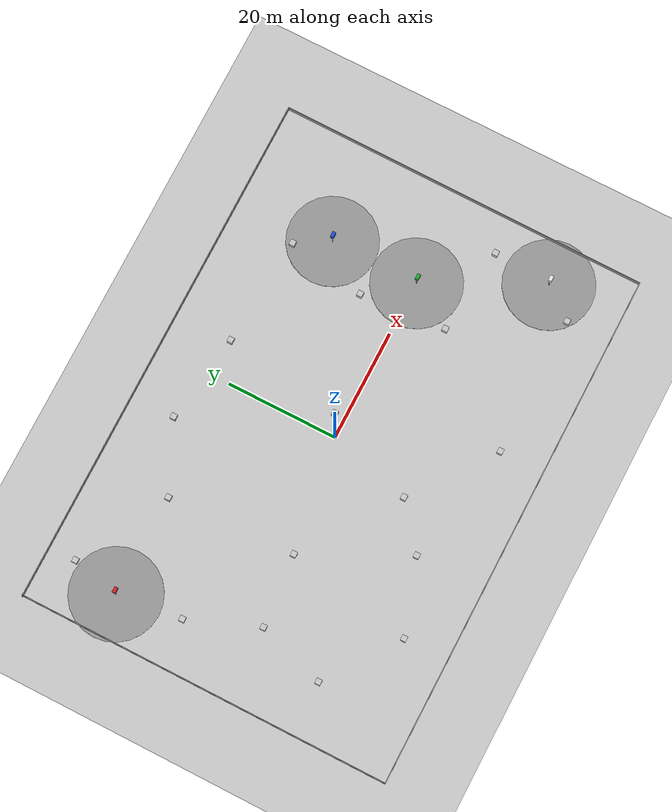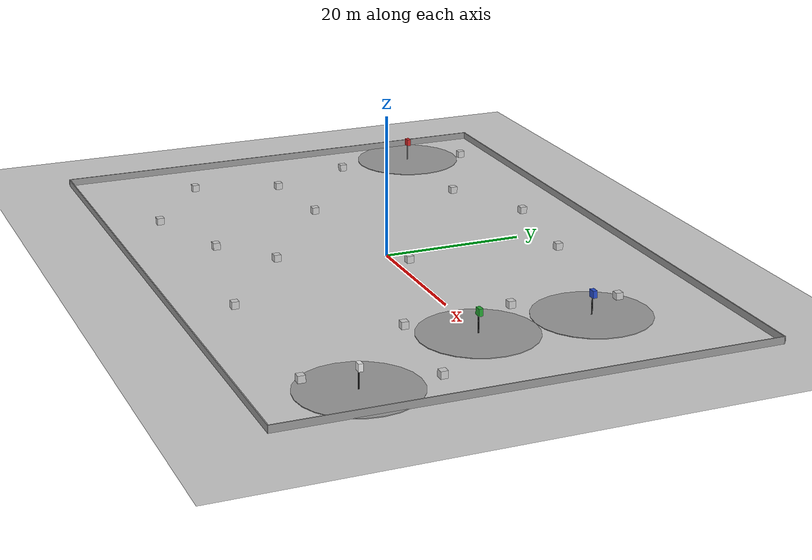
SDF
<?xml version="1.0" encoding="UTF-8"?>
<sdf version="1.4">
  <world name="default">
    <!-- *********************INITIAL POSE OF THE CAMERA***************************** -->
		<gui>
      <camera name="main_cam">
        <pose>1.15 -71.8 70 0 0.8 1.57</pose>
      </camera>
    </gui>

    <!-- *********************GROUND AND SUN***************************** -->
    <include>
      <uri>model://ground_plane</uri>
    </include>

    <include>
      <uri>model://sun</uri>
    </include>

    <!-- *********************FLAGS***************************** -->
    <include>
      <uri>model://red_flag</uri>
      <name>flag_1</name>
      <pose>-40 20 0 0 0 0</pose>
    </include>

    <include>
      <uri>model://white_flag</uri>
      <name>flag_2</name>
      <pose>40 -20 0 0 0 0</pose>
    </include>

    <include>
      <uri>model://green_flag</uri>
      <name>flag_3</name>
      <pose>30 0.0 0 0 0 0</pose>
    </include>

    <include>
      <uri>model://blue_flag</uri>
      <name>flag_4</name>
      <pose>30 16 0 0 0 0</pose>
    </include>

  <!-- **********************RADIUS**************************** -->

    <include>
      <uri>model://radius4</uri>
      <name>c1</name>
      <pose>-40 20 0 0 0 0</pose>
    </include>

    <include>
      <uri>model://radius4</uri>
      <name>c2</name>
      <pose>40 -20 0 0 0 0</pose>
    </include>

    <include>
      <uri>model://radius4</uri>
      <name>c3</name>
      <pose>30 16 0 0 0 0</pose>
    </include>

       <include>
      <uri>model://radius4</uri>
      <name>c4</name>
      <pose>30 0.0 0 0 0 0</pose>
    </include>

    <!-- **********************DISTANCE TO FLAGS PLUGIN**************************** -->
    <plugin name="dtfPlugin" filename="libdistance_to_flag_plugin.so">
      <nbFlags>1</nbFlags>
    </plugin>

    <!-- **********************WALLS**************************** -->
    <include>
      <uri>model://walls_evry</uri>
      <name>limits</name>
      <pose>0 0 0 0 0 0</pose>
    </include>

    <!-- **********************OBSTACLES**************************** -->
    <include>
      <uri>model://basic_box</uri>
      <pose>-38.16 28.54 0 0 0 0</pose>
      <name>obstacle_1</name>
    </include>

    <include>
      <uri>model://basic_box</uri>
      <pose>-38.68 8.27 0 0 0 0</pose>
      <name>obstacle_2</name>
    </include>

    <include>
      <uri>model://basic_box</uri>
      <pose>-37.6 -16.35 0 0 0 0</pose>
      <name>obstacle_3</name>
    </include>

    <include>
      <uri>model://basic_box</uri>
      <pose>-33.77 -4.23 0 0 0 0</pose>
      <name>obstacle_4</name>
    </include>

    <include>
      <uri>model://basic_box</uri>
      <pose>-24.82 -25.54 0 0 0 0</pose>
      <name>obstacle_5</name>
    </include>

    <include>
      <uri>model://basic_box</uri>
      <pose>-21.83 19.86 0 0 0 0</pose>
      <name>obstacle_6</name>
    </include>

    <include>
      <uri>model://basic_box</uri>
      <pose>-20.72 -3.03 0 0 0 0</pose>
      <name>obstacle_7</name>
    </include>

    <include>
      <uri>model://basic_box</uri>
      <pose>-11.63 -21.17 0 0 0 0</pose>
      <name>obstacle_8</name>
    </include>

    <include>
      <uri>model://basic_box</uri>
      <pose>-9.32 25.52 0 0 0 0</pose>
      <name>obstacle_9</name>
    </include>

    <include>
      <uri>model://basic_box</uri>
      <pose>-3.87 -14.86 0 0 0 0</pose>
      <name>obstacle_10</name>
    </include>

    <include>
      <uri>model://basic_box</uri>
      <pose>3.5 1.89 0 0 0 0</pose>
      <name>obstacle_11</name>
    </include>

    <include>
      <uri>model://basic_box</uri>
      <pose>6.67 23.2 0 0 0 0</pose>
      <name>obstacle_12</name>
    </include>

    <include>
      <uri>model://basic_box</uri>
      <pose>10.44 -25.58 0 0 0 0</pose>
      <name>obstacle_13</name>
    </include>

    <include>
      <uri>model://basic_box</uri>
      <pose>23.77 7.52 0 0 0 0</pose>
      <name>obstacle_14</name>
    </include>

    <include>
      <uri>model://basic_box</uri>
      <pose>26.46 21.76 0 0 0 0</pose>
      <name>obstacle_15</name>
    </include>

    <include>
      <uri>model://basic_box</uri>
      <pose>24.96 -7.97 0 0 0 0</pose>
      <name>obstacle_16</name>
    </include>

    <include>
      <uri>model://basic_box</uri>
      <pose>35.52 -25.59 0 0 0 0</pose>
      <name>obstacle_17</name>
    </include>

    <include>
      <uri>model://basic_box</uri>
      <pose>40.65 -9.57 0 0 0 0</pose>
      <name>obstacle_18</name>
    </include>
  </world>
</sdf>

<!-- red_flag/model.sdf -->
<sdf version="1.4">
  <model name="flag">
    <static>true</static>
    <link name="flag">
      <visual name="base">
        <pose>0 0 1.5 0 0 0</pose>
        <geometry>
          <cylinder>
            <radius>0.1</radius>
            <length>3</length>
          </cylinder>
        </geometry>

        <!-- BLACK -->
        <material>
          <ambient>0 0 0 1</ambient>
        </material>
      </visual>

      <visual name="top">
        <pose>0.25 0 3 0 0 0</pose>
        <geometry>
          <box>
            <size>1 0.6 1</size>
          </box>
        </geometry>

        <!-- RED -->
        <material>
          <script>
            <uri>file://media/materials/scripts/gazebo.material</uri>
            <name>Gazebo/Red</name>
          </script>
        </material>

      </visual>
    </link>
  </model>
</sdf>

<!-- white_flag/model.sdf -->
<sdf version="1.4">
  <model name="flag">
    <static>true</static>
    <link name="flag">
      <visual name="base">
        <pose>0 0 1.5 0 0 0</pose>
        <geometry>
          <cylinder>
            <radius>0.1</radius>
            <length>3</length>
          </cylinder>
        </geometry>

        <!-- BLACK -->
        <material>
          <ambient>0 0 0 1</ambient>
        </material>
      </visual>

      <visual name="top">
        <pose>0.25 0 3 0 0 0</pose>
        <geometry>
          <box>
            <size>1 0.6 1</size>
          </box>
        </geometry>

        <!-- WHITE -->
        <material>
          <script>
            <uri>file://media/materials/scripts/gazebo.material</uri>
            <name>Gazebo/White</name>
          </script>
        </material>

      </visual>
    </link>
  </model>
</sdf>

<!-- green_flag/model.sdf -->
<sdf version="1.4">
  <model name="flag">
    <static>true</static>
    <link name="flag">
      <visual name="base">
        <pose>0 0 1.5 0 0 0</pose>
        <geometry>
          <cylinder>
            <radius>0.1</radius>
            <length>3</length>
          </cylinder>
        </geometry>

        <!-- BLACK -->
        <material>
          <ambient>0 0 0 1</ambient>
        </material>
      </visual>

      <visual name="top">
        <pose>0.25 0 3 0 0 0</pose>
        <geometry>
          <box>
            <size>1 0.6 1</size>
          </box>
        </geometry>

        <!-- GREEN -->
        <material>
          <script>
            <uri>file://media/materials/scripts/gazebo.material</uri>
            <name>Gazebo/Green</name>
          </script>
        </material>

      </visual>
    </link>
  </model>
</sdf>

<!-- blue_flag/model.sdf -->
<sdf version="1.4">
  <model name="flag">
    <static>true</static>
    <link name="flag">
      <visual name="base">
        <pose>0 0 1.5 0 0 0</pose>
        <geometry>
          <cylinder>
            <radius>0.1</radius>
            <length>3</length>
          </cylinder>
        </geometry>

        <!-- BLACK -->
        <material>
          <ambient>0 0 0 1</ambient>
        </material>
      </visual>

      <visual name="top">
        <pose>0.25 0 3 0 0 0</pose>
        <geometry>
          <box>
            <size>1 0.6 1</size>
          </box>
        </geometry>

        <!-- BLUE -->
        <material>
          <script>
            <uri>file://media/materials/scripts/gazebo.material</uri>
            <name>Gazebo/Blue</name>
          </script>
        </material>

      </visual>
    </link>
  </model>
</sdf>

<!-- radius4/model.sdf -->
<sdf version='1.7'>
  <model name='radius4'>
    <link name='link'>
      <self_collide>0</self_collide>
      <enable_wind>0</enable_wind>
      <kinematic>0</kinematic>
      <pose>0 0 0 0 -0 0</pose>
      <gravity>1</gravity>
      <inertial>
        <mass>1</mass>
        <pose>0 0 0 0 -0 0</pose>
        <inertia>
          <ixx>1</ixx>
          <ixy>0</ixy>
          <ixz>0</ixz>
          <iyy>1</iyy>
          <iyz>0</iyz>
          <izz>1</izz>
        </inertia>
      </inertial>
      <visual name='visual'>
        <geometry>
          <cylinder>
            <radius>8</radius>
            <length>0.1</length>
            <size>8.0 0.1</size>
          </cylinder>
        </geometry>
        <material>
          <script>
            <name>Gazebo/Grey</name>
            <uri>file://media/materials/scripts/gazebo.material</uri>
          </script>
          <shader type='vertex'>
            <normal_map>__default__</normal_map>
          </shader>
        </material>
        <pose>0 0 0 0 -0 0</pose>
        <transparency>0</transparency>
        <cast_shadows>1</cast_shadows>
      </visual>
    </link>
    <static>1</static>
    <allow_auto_disable>1</allow_auto_disable>
  </model>
</sdf>

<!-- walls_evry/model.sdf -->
<sdf version='1.6'>
  <model name='walls_evry'>
    <pose frame=''>0.580204 -5.79028 0 0 -0 0</pose>
    <link name='Wall_0'>
      <collision name='Wall_0_Collision'>
        <geometry>
          <box>
            <size>95 0.15 1</size>
          </box>
        </geometry>
        <pose frame=''>0 0 0.5 0 -0 0</pose>
      </collision>
      <visual name='Wall_0_Visual'>
        <pose frame=''>0 0 0.5 0 -0 0</pose>
        <geometry>
          <box>
            <size>95 0.15 1</size>
          </box>
        </geometry>
        <material>
          <script>
            <uri>file://media/materials/scripts/gazebo.material</uri>
            <name>Gazebo/Grey</name>
          </script>
          <ambient>1 1 1 1</ambient>
        </material>
        <meta>
          <layer>0</layer>
        </meta>
      </visual>
      <pose frame=''>-0.000204 33.4423 0 0 -0 0</pose>
    </link>
    <link name='Wall_1'>
      <collision name='Wall_1_Collision'>
        <geometry>
          <box>
            <size>67.1433 0.15 1</size>
          </box>
        </geometry>
        <pose frame=''>0 0 0.5 0 -0 0</pose>
      </collision>
      <visual name='Wall_1_Visual'>
        <pose frame=''>0 0 0.5 0 -0 0</pose>
        <geometry>
          <box>
            <size>67.1433 0.15 1</size>
          </box>
        </geometry>
        <material>
          <script>
            <uri>file://media/materials/scripts/gazebo.material</uri>
            <name>Gazebo/Grey</name>
          </script>
          <ambient>1 1 1 1</ambient>
        </material>
        <meta>
          <layer>0</layer>
        </meta>
      </visual>
      <pose frame=''>47.2433 -0.053719 0 0 -0 -1.57621</pose>
    </link>
    <link name='Wall_2'>
      <collision name='Wall_2_Collision'>
        <geometry>
          <box>
            <size>94.5 0.15 1</size>
          </box>
        </geometry>
        <pose frame=''>0 0 0.5 0 -0 0</pose>
      </collision>
      <visual name='Wall_2_Visual'>
        <pose frame=''>0 0 0.5 0 -0 0</pose>
        <geometry>
          <box>
            <size>94.5 0.15 1</size>
          </box>
        </geometry>
        <material>
          <script>
            <uri>file://media/materials/scripts/gazebo.material</uri>
            <name>Gazebo/Grey</name>
          </script>
          <ambient>1 1 1 1</ambient>
        </material>
        <meta>
          <layer>0</layer>
        </meta>
      </visual>
      <pose frame=''>-0.113204 -33.5497 0 0 -0 3.14159</pose>
    </link>
    <link name='Wall_3'>
      <collision name='Wall_3_Collision'>
        <geometry>
          <box>
            <size>67.25 0.15 1</size>
          </box>
        </geometry>
        <pose frame=''>0 0 0.5 0 -0 0</pose>
      </collision>
      <visual name='Wall_3_Visual'>
        <pose frame=''>0 0 0.5 0 -0 0</pose>
        <geometry>
          <box>
            <size>67.25 0.15 1</size>
          </box>
        </geometry>
        <material>
          <script>
            <uri>file://media/materials/scripts/gazebo.material</uri>
            <name>Gazebo/Grey</name>
          </script>
          <ambient>1 1 1 1</ambient>
        </material>
        <meta>
          <layer>0</layer>
        </meta>
      </visual>
      <pose frame=''>-47.2882 0.000281 0 0 -0 1.5708</pose>
    </link>
    <static>1</static>
  </model>
</sdf>

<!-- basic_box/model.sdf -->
<sdf version="1.7">
<model name="basic_box" canonical_link="node0_link">
  <link name="node0_link">
    <collision name="node0_collision">
      <pose relative_to="node0_link">0.00000 0.00000 0.00000 0.00000 0.00000 0.00000</pose>
      <geometry>
        <mesh>
          <uri>meshes/Body.dae</uri>
          <scale>1.00000 1.00000 1.00000</scale>
        </mesh>
      </geometry>
      <surface>
        <contact><ode>  <max_vel>0.001</max_vel><min_depth>0.01</min_depth><kd>1e15</kd>  </ode></contact>
      </surface>
    </collision>
    <inertial>
      <inertia>
        <ixx>10.00000</ixx>
        <ixy>0.00000</ixy>
        <ixz>0.00000</ixz>
        <iyy>10.00000</iyy>
        <iyz>0.00000</iyz>
        <izz>10.00000</izz>
      </inertia>
      <pose relative_to="node0_link">0.00000 0.00000 0.50000 0.00000 0.00000 0.00000</pose>
      <mass>60.00000</mass>
    </inertial>
    <visual name="node0">
      <material>
        <diffuse>0.80000 0.80000 0.80000 1.00000</diffuse>
        <specular>0.40000 0.40000 0.40000 0.49804</specular>
        <emissive>0.00000 0.00000 0.00000 1.00000</emissive>
      </material>
      <pose relative_to="node0_link">0.00000 0.00000 0.00000 0.00000 0.00000 0.00000</pose>
      <geometry>
        <mesh>
          <uri>meshes/Body.dae</uri>
          <scale>1.00000 1.00000 1.00000</scale>
        </mesh>
      </geometry>
    </visual>
  </link>
</model>
</sdf>
